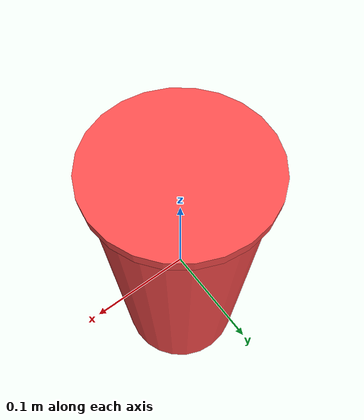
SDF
<?xml version='1.0'?>
<sdf version='1.6'>
  <model name='pringles'>
    <link name='link_3'>
      <inertial>
        <mass>1</mass>
        <inertia>
          <ixx>0.145833</ixx>
          <ixy>0</ixy>
          <ixz>0</ixz>
          <iyy>0.145833</iyy>
          <iyz>0</iyz>
          <izz>0.125</izz>
        </inertia>
        <pose frame=''>0 0 0 0 -0 0</pose>
      </inertial>
      <pose frame=''>0 0 0 0 -0 0</pose>
      <gravity>1</gravity>
      <self_collide>0</self_collide>
      <kinematic>0</kinematic>
      <enable_wind>0</enable_wind>
      <visual name='visual'>
        <pose frame=''>0 0 0 0 -0 0</pose>
        <geometry>
          <cylinder>
            <radius>0.07</radius>
            <length>0.3</length>
          </cylinder>
        </geometry>
        <material>
          <lighting>1</lighting>
          <script>
            <uri>file://media/materials/scripts/gazebo.material</uri>
            <name>Gazebo/Grey</name>
          </script>
          <shader type='pixel'>
            <normal_map>__default__</normal_map>
          </shader>
          <ambient>1 0.3 0.3 1</ambient>
          <diffuse>0.7 0.7 0.7 1</diffuse>
          <specular>0.01 0.01 0.01 1</specular>
          <emissive>0 0 0 1</emissive>
        </material>
        <transparency>0</transparency>
        <cast_shadows>1</cast_shadows>
      </visual>
      <collision name='collision'>
        <laser_retro>0</laser_retro>
        <max_contacts>10</max_contacts>
        <pose frame=''>0 0 0 0 -0 0</pose>
        <geometry>
          <cylinder>
            <radius>0.07</radius>
            <length>0.3</length>
          </cylinder>
        </geometry>
        <surface>
          <friction>
            <ode>
              <mu>1</mu>
              <mu2>1</mu2>
              <fdir1>0 0 0</fdir1>
              <slip1>0</slip1>
              <slip2>0</slip2>
            </ode>
            <torsional>
              <coefficient>1</coefficient>
              <patch_radius>0</patch_radius>
              <surface_radius>0</surface_radius>
              <use_patch_radius>1</use_patch_radius>
              <ode>
                <slip>0</slip>
              </ode>
            </torsional>
          </friction>
          <bounce>
            <restitution_coefficient>0</restitution_coefficient>
            <threshold>1e+06</threshold>
          </bounce>
          <contact>
            <collide_without_contact>0</collide_without_contact>
            <collide_without_contact_bitmask>1</collide_without_contact_bitmask>
            <collide_bitmask>1</collide_bitmask>
            <ode>
              <soft_cfm>0</soft_cfm>
              <soft_erp>0.2</soft_erp>
              <kp>1e+13</kp>
              <kd>1</kd>
              <max_vel>0.01</max_vel>
              <min_depth>0</min_depth>
            </ode>
            <bullet>
              <split_impulse>1</split_impulse>
              <split_impulse_penetration_threshold>-0.01</split_impulse_penetration_threshold>
              <soft_cfm>0</soft_cfm>
              <soft_erp>0.2</soft_erp>
              <kp>1e+13</kp>
              <kd>1</kd>
            </bullet>
          </contact>
        </surface>
      </collision>
    </link>
    <link name='link_4'>
      <inertial>
        <mass>0</mass>
        <inertia>
          <ixx>0</ixx>
          <ixy>0</ixy>
          <ixz>0</ixz>
          <iyy>0</iyy>
          <iyz>0</iyz>
          <izz>0</izz>
        </inertia>
        <pose frame=''>0 0 0 0 -0 0</pose>
      </inertial>
      <pose frame=''>0 -0 0.15 -0.000193 0.000381 0</pose>
      <gravity>1</gravity>
      <self_collide>0</self_collide>
      <kinematic>0</kinematic>
      <enable_wind>0</enable_wind>
      <visual name='visual'>
        <pose frame=''>0 0 0 0 -0 0</pose>
        <geometry>
          <cylinder>
            <radius>0.075</radius>
            <length>0.01</length>
          </cylinder>
        </geometry>
        <material>
          <lighting>1</lighting>
          <script>
            <uri>file://media/materials/scripts/gazebo.material</uri>
            <name>Gazebo/Grey</name>
          </script>
          <shader type='pixel'>
            <normal_map>__default__</normal_map>
          </shader>
          <ambient>1 0.3 0.3 1</ambient>
          <diffuse>0.7 0.7 0.7 1</diffuse>
          <specular>0.01 0.01 0.01 1</specular>
          <emissive>0 0 0 1</emissive>
        </material>
        <transparency>0</transparency>
        <cast_shadows>1</cast_shadows>
      </visual>
      <collision name='collision'>
        <laser_retro>0</laser_retro>
        <max_contacts>10</max_contacts>
        <pose frame=''>0 0 0 0 -0 0</pose>
        <geometry>
          <cylinder>
            <radius>0.075</radius>
            <length>0.01</length>
          </cylinder>
        </geometry>
        <surface>
          <friction>
            <ode>
              <mu>1</mu>
              <mu2>1</mu2>
              <fdir1>0 0 0</fdir1>
              <slip1>0</slip1>
              <slip2>0</slip2>
            </ode>
            <torsional>
              <coefficient>1</coefficient>
              <patch_radius>0</patch_radius>
              <surface_radius>0</surface_radius>
              <use_patch_radius>1</use_patch_radius>
              <ode>
                <slip>0</slip>
              </ode>
            </torsional>
          </friction>
          <bounce>
            <restitution_coefficient>0</restitution_coefficient>
            <threshold>1e+06</threshold>
          </bounce>
          <contact>
            <collide_without_contact>0</collide_without_contact>
            <collide_without_contact_bitmask>1</collide_without_contact_bitmask>
            <collide_bitmask>1</collide_bitmask>
            <ode>
              <soft_cfm>0</soft_cfm>
              <soft_erp>0.2</soft_erp>
              <kp>1e+13</kp>
              <kd>1</kd>
              <max_vel>0.01</max_vel>
              <min_depth>0</min_depth>
            </ode>
            <bullet>
              <split_impulse>1</split_impulse>
              <split_impulse_penetration_threshold>-0.01</split_impulse_penetration_threshold>
              <soft_cfm>0</soft_cfm>
              <soft_erp>0.2</soft_erp>
              <kp>1e+13</kp>
              <kd>1</kd>
            </bullet>
          </contact>
        </surface>
      </collision>
    </link>
    <joint name='link_3_JOINT_0' type='fixed'>
      <parent>link_3</parent>
      <child>link_4</child>
      <pose frame=''>0 0 0 0 -0 0</pose>
      <physics>
        <ode>
          <limit>
            <cfm>0</cfm>
            <erp>0.2</erp>
          </limit>
          <suspension>
            <cfm>0</cfm>
            <erp>0.2</erp>
          </suspension>
        </ode>
      </physics>
    </joint>
    <static>0</static>
    <allow_auto_disable>1</allow_auto_disable>
  </model>
</sdf>
